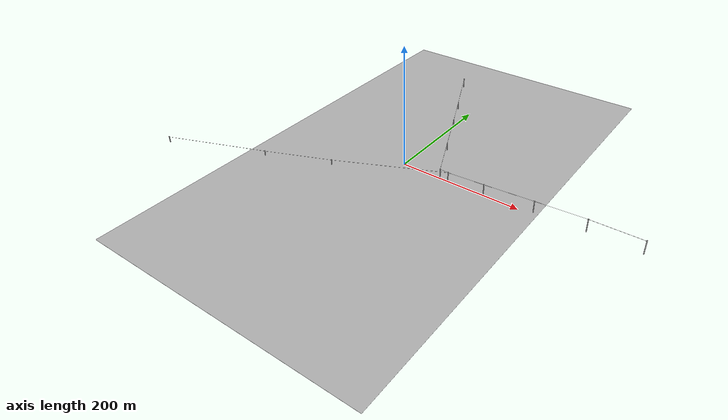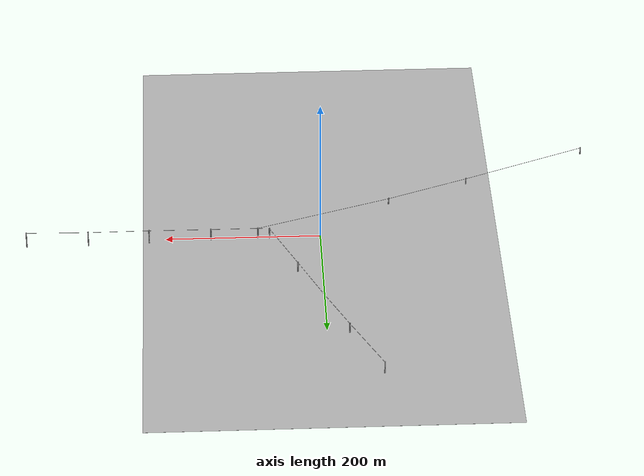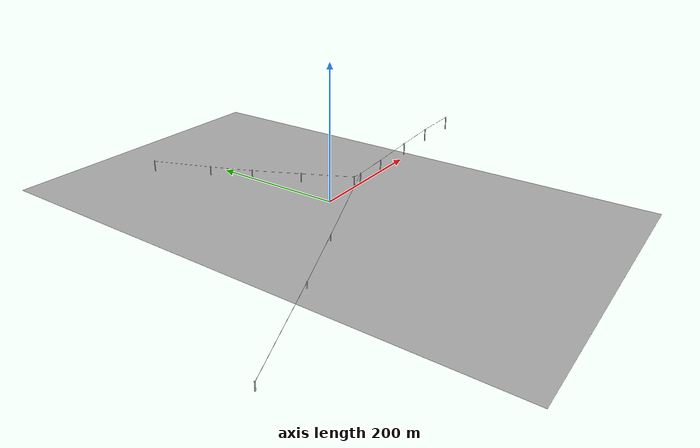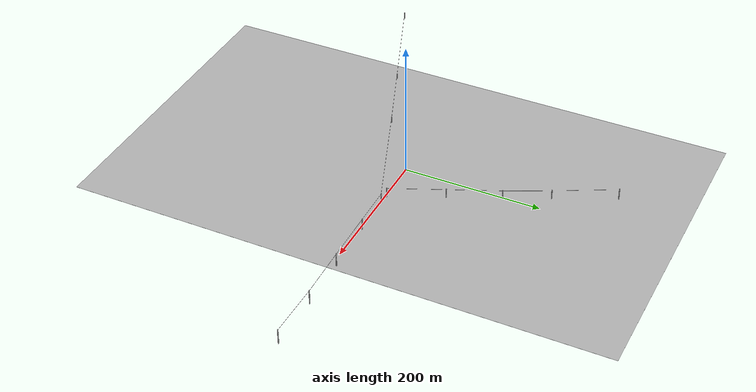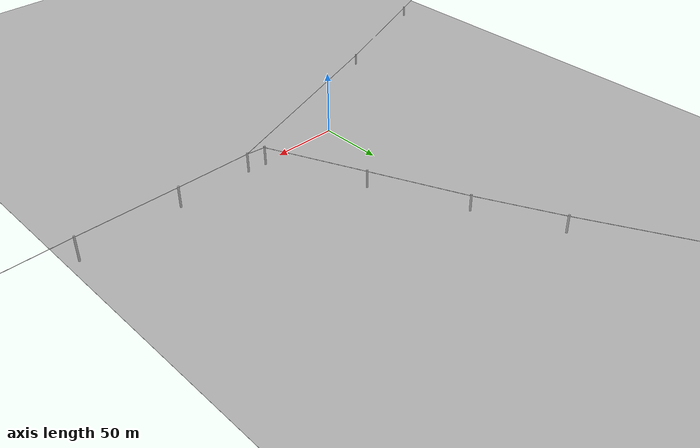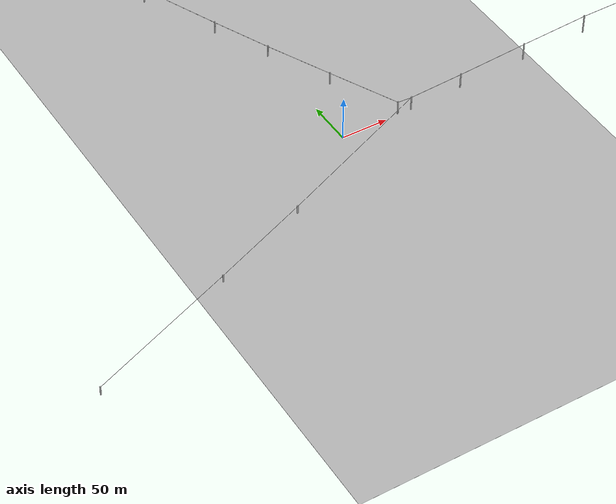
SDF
<sdf version="1.4">
 <world name="burguillos_power_lines_world">
  <physics type="ode">
   <ode>
    <solver><type>quick</type><iters>10</iters><sor>1.3</sor></solver>
    <constraints>
     <cfm>0</cfm>
     <erp>0.2</erp>
     <contact_max_correcting_vel>100</contact_max_correcting_vel>
     <contact_surface_layer>0.001</contact_surface_layer>
    </constraints>
   </ode>
   <max_step_size>0.004</max_step_size>
   <real_time_factor>1</real_time_factor>
   <real_time_update_rate>250</real_time_update_rate>
   <gravity>0 0 -9.8</gravity>
   <magnetic_field>6e-06 2.3e-05 -4.2e-05</magnetic_field>
  </physics>
  <include><uri>model://burguillos_power_lines</uri></include>
  <include><uri>model://sun</uri></include>
  <model name="Pylon_low_res_1">
   <static>1</static>
   <link name="link">
    <visual name="visual">
     <geometry><cylinder><radius>0.75</radius><length>16.32937</length></cylinder></geometry>
    </visual>
   </link>
   <pose>80.7665 1.30242 8.164685 0 0 0</pose>
  </model>
  <model name="Pylon_low_res_2">
   <static>1</static>
   <link name="link">
    <visual name="visual">
     <geometry><cylinder><radius>0.75</radius><length>9.57803</length></cylinder></geometry>
    </visual>
   </link>
   <pose>-92.9081 -67.2953 4.789015 0 0 0</pose>
  </model>
  <model name="Pylon_low_res_3">
   <static>1</static>
   <link name="link">
    <visual name="visual">
     <geometry><cylinder><radius>0.75</radius><length>8.99072</length></cylinder></geometry>
    </visual>
   </link>
   <pose>-198.16 -109.34 4.49536 0 0 0</pose>
  </model>
  <model name="Pylon_low_res_4">
   <static>1</static>
   <link name="link">
    <visual name="visual">
     <geometry><cylinder><radius>0.75</radius><length>10.62651</length></cylinder></geometry>
    </visual>
   </link>
   <pose>-357.534 -172.716 5.313255 0 0 0</pose>
  </model>
  <model name="Pylon_low_res_5">
   <static>1</static>
   <link name="link">
    <visual name="visual">
     <geometry><cylinder><radius>0.75</radius><length>15.944771</length></cylinder></geometry>
    </visual>
   </link>
   <pose>65.7817 2.49236 7.9723855 0 0 0</pose>
  </model>
  <model name="Pylon_low_res_6">
   <static>1</static>
   <link name="link">
    <visual name="visual">
     <geometry><cylinder><radius>0.75</radius><length>14.78669</length></cylinder></geometry>
    </visual>
   </link>
   <pose>31.9492 76.0934 7.393345 0 0 0</pose>
  </model>
  <model name="Pylon_low_res_7">
   <static>1</static>
   <link name="link">
    <visual name="visual">
     <geometry><cylinder><radius>0.75</radius><length>13.76669</length></cylinder></geometry>
    </visual>
   </link>
   <pose>0.347093 145.776 6.883345 0 0 0</pose>
  </model>
  <model name="Pylon_low_res_8">
   <static>1</static>
   <link name="link">
    <visual name="visual">
     <geometry><cylinder><radius>0.75</radius><length>14.722359</length></cylinder></geometry>
    </visual>
   </link>
   <pose>-27.4924 206.404 7.3611795 0 0 0</pose>
  </model>
  <model name="Pylon_low_res_9">
   <static>1</static>
   <link name="link">
    <visual name="visual">
     <geometry><cylinder><radius>0.75</radius><length>17.59584</length></cylinder></geometry>
    </visual>
   </link>
   <pose>-65.9503 289.206 8.79792 0 0 0</pose>
  </model>
  <model name="Pylon_low_res_10">
   <static>1</static>
   <link name="link">
    <visual name="visual">
     <geometry><cylinder><radius>0.75</radius><length>17.76901</length></cylinder></geometry>
    </visual>
   </link>
   <pose>141.512 3.34838 8.884505 0 0 0</pose>
  </model>
  <model name="Pylon_low_res_11">
   <static>1</static>
   <link name="link">
    <visual name="visual">
     <geometry><cylinder><radius>0.75</radius><length>20.39417</length></cylinder></geometry>
    </visual>
   </link>
   <pose>221.271 6.44622 10.197085 0 0 0</pose>
  </model>
  <model name="Pylon_low_res_12">
   <static>1</static>
   <link name="link">
    <visual name="visual">
     <geometry><cylinder><radius>0.75</radius><length>22.12665</length></cylinder></geometry>
    </visual>
   </link>
   <pose>299.497 9.54586 11.063325 0 0 0</pose>
  </model>
  <model name="Pylon_low_res_13">
   <static>1</static>
   <link name="link">
    <visual name="visual">
     <geometry><cylinder><radius>0.75</radius><length>23.26408</length></cylinder></geometry>
    </visual>
   </link>
   <pose>378.85 9.2912 11.63204 0 0 0</pose>
  </model>
  <model name="Wire_low_res_1">
   <static>1</static>
   <link name="link">
    <visual name="visual">
     <geometry><cylinder><radius>0.15</radius><length>186.853136088624</length></cylinder></geometry>
    </visual>
   </link>
   <pose>-6.07080000000001 -32.99644 11.9537 1.60693599237327 0 -1.19462637522396</pose>
  </model>
  <model name="Wire_low_res_2">
   <static>1</static>
   <link name="link">
    <visual name="visual">
     <geometry><cylinder><radius>0.15</radius><length>113.340479021116</length></cylinder></geometry>
    </visual>
   </link>
   <pose>-145.53405 -88.31765 8.284375 1.575978170329 0 -1.19074919517359</pose>
  </model>
  <model name="Wire_low_res_3">
   <static>1</static>
   <link name="link">
    <visual name="visual">
     <geometry><cylinder><radius>0.15</radius><length>171.520450853314</length></cylinder></geometry>
    </visual>
   </link>
   <pose>-277.847 -141.028 8.808615 1.56125918536423 0 -1.19231241932168</pose>
  </model>
  <model name="Wire_low_res_4">
   <static>1</static>
   <link name="link">
    <visual name="visual">
     <geometry><cylinder><radius>0.15</radius><length>15.0368914551646</length></cylinder></geometry>
    </visual>
   </link>
   <pose>73.2741 1.89739 15.1370705 1.59637614471178 0 4.63314546694043</pose>
  </model>
  <model name="Wire_low_res_5">
   <static>1</static>
   <link name="link">
    <visual name="visual">
     <geometry><cylinder><radius>0.15</radius><length>81.0129143836596</length></cylinder></geometry>
    </visual>
   </link>
   <pose>48.86545 39.29288 14.3657305 1.58509183084221 0 3.57246246960678</pose>
  </model>
  <model name="Wire_low_res_6">
   <static>1</static>
   <link name="link">
    <visual name="visual">
     <geometry><cylinder><radius>0.15</radius><length>76.5205744202136</length></cylinder></geometry>
    </visual>
   </link>
   <pose>16.1481465 110.9347 13.27669 1.58412646991152 0 3.56736584010694</pose>
  </model>
  <model name="Wire_low_res_7">
   <static>1</static>
   <link name="link">
    <visual name="visual">
     <geometry><cylinder><radius>0.15</radius><length>66.7210990447145</length></cylinder></geometry>
    </visual>
   </link>
   <pose>-13.5726535 176.09 13.2445245 1.55647249679356 0 3.57205886005484</pose>
  </model>
  <model name="Wire_low_res_8">
   <static>1</static>
   <link name="link">
    <visual name="visual">
     <geometry><cylinder><radius>0.15</radius><length>91.342422616588</length></cylinder></geometry>
    </visual>
   </link>
   <pose>-46.72135 247.805 15.1590995 1.53933279567026 0 3.57640308970749</pose>
  </model>
  <model name="Wire_low_res_9">
   <static>1</static>
   <link name="link">
    <visual name="visual">
     <geometry><cylinder><radius>0.15</radius><length>60.7969924083519</length></cylinder></geometry>
    </visual>
   </link>
   <pose>111.13925 2.3254 16.04919 1.54711465249936 0 1.6044644483967</pose>
  </model>
  <model name="Wire_low_res_10">
   <static>1</static>
   <link name="link">
    <visual name="visual">
     <geometry><cylinder><radius>0.15</radius><length>79.8622949751082</length></cylinder></geometry>
    </visual>
   </link>
   <pose>181.3915 4.8973 18.08159 1.53791932292352 0 1.60961681932486</pose>
  </model>
  <model name="Wire_low_res_11">
   <static>1</static>
   <link name="link">
    <visual name="visual">
     <geometry><cylinder><radius>0.15</radius><length>78.3065535640537</length></cylinder></geometry>
    </visual>
   </link>
   <pose>260.384 7.99604 20.26041 1.54867019188381 0 1.61039977455605</pose>
  </model>
  <model name="Wire_low_res_12">
   <static>1</static>
   <link name="link">
    <visual name="visual">
     <geometry><cylinder><radius>0.15</radius><length>79.3615600131481</length></cylinder></geometry>
    </visual>
   </link>
   <pose>339.1735 9.41853 21.695365 1.55646358252942 0 1.5675871333711</pose>
  </model>
 </world>
</sdf>

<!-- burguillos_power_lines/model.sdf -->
<sdf version="1.5">
  <model name="burguillos_power_lines">
    <static>true</static>
    <link name="floor">
      <collision name="collision">
        <geometry>
          <box>
            <size>459.08 783.68 .1</size>
          </box>
        </geometry>
      </collision>
      <visual name="visual">
        <cast_shadows>false</cast_shadows>
        <geometry>
          <box>
            <size>459.08 783.68 .1</size>
          </box>
        </geometry>
        <material>
          <script>
            <uri>model://burguillos_power_lines/materials/scripts</uri>
            <uri>model://burguillos_power_lines/materials/textures</uri>
            <name>burguillos_power_lines</name>
          </script>
        </material>
      </visual>
    </link>
  </model>
</sdf>
